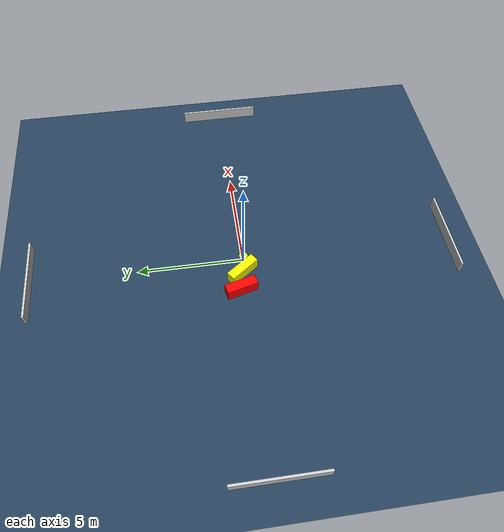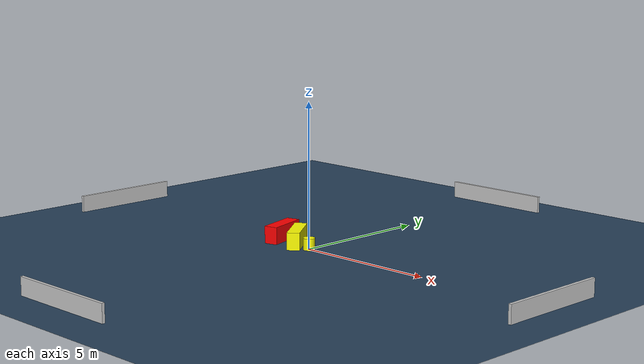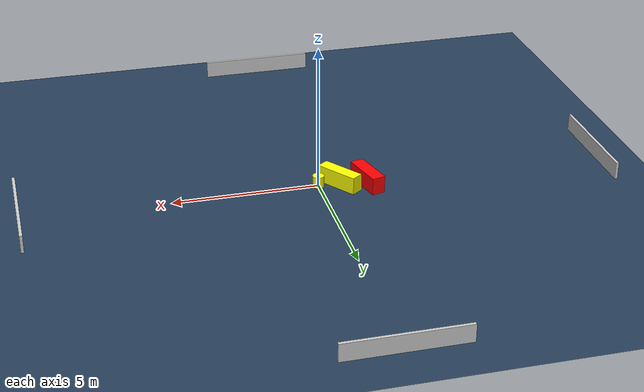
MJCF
<?xml version="1.0" ?>
<mujoco model="generated_environment">
  <option timestep="0.01" integrator="RK4" cone="elliptic"/>
  <default>
    <geom density="1"/>
  </default>
  <asset>
    <texture builtin="gradient" height="3072" name="skybox" rgb1="0.3 0.5 0.7" rgb2="0 0 0" type="skybox" width="512"/>
    <texture builtin="checker" height="300" name="groundplane" rgb1="0.2 0.3 0.4" rgb2="0.1 0.2 0.3" type="2d" width="300"/>
    <material name="groundplane" reflectance="0.2" texrepeat="5 5" texture="groundplane"/>
  </asset>
  <worldbody>
    <light dir="0 0 -1" directional="true" pos="0 0 1.5"/>
    <geom condim="3" friction="0.5 0.005 0.001" material="groundplane" name="floor" pos="0 0 0" size="0 0 0.05" type="plane"/>
    <body name="walls">
      <geom name="wall_1" condim="4" pos="-10.0 0.0 0.3" rgba="0.800000011920929 0.800000011920929 0.800000011920929 1.0" size="0.05 2.0 0.3" type="box"/>
      <geom name="wall_2" condim="4" pos="10.0 0.0 0.3" rgba="0.800000011920929 0.800000011920929 0.800000011920929 1.0" size="0.05 2.0 0.3" type="box"/>
      <geom name="wall_3" condim="4" pos="0.0 -10.0 0.3" rgba="0.800000011920929 0.800000011920929 0.800000011920929 1.0" size="2.0 0.05 0.3" type="box"/>
      <geom name="wall_4" condim="4" pos="0.0 10.0 0.3" rgba="0.800000011920929 0.800000011920929 0.800000011920929 1.0" size="2.0 0.05 0.3" type="box"/>
    </body>
    <body name="robot">
      <joint name="joint_x" type="slide" pos="0 0 0" axis="1 0 0"/>
      <joint name="joint_y" type="slide" pos="0 0 0" axis="0 1 0"/>
      <geom name="robot" type="cylinder" pos="0.0 0.0 0.2" size="0.2 0.2 0.0" mass="5.0" friction="1.0 0.005 0.0001" condim="4" rgba="1.0 1.0 0.0 1.0"/>
    </body>
    <body name="obstacle_1_movable">
      <geom name="obstacle_1_movable" condim="4" pos="-0.7144847320347425 0.138022173320456 0.3" euler="0 0 305.67586573731484" friction="0.0 0.005 0.001" rgba="1.0 1.0 0.0 1.0" size="0.7627300645427579 0.21743955547697724 0.3" type="box" mass="0.1"/>
      <joint type="free"/>
    </body>
    <body name="obstacle_2_static">
      <geom name="obstacle_2_static" condim="4" pos="-1.6408179161207523 0.31402290742667327 0.3" euler="0 0 104.64853764608824" friction="0.0 0.005 0.001" rgba="1.0 0.0 0.0 1.0" size="0.7346530937390565 0.2329007479415155 0.3" type="box"/>
    </body>
  </worldbody>
  <actuator>
    <motor name="actuator_x" joint="joint_x" gear="1" ctrlrange="-1 1"/>
    <motor name="actuator_y" joint="joint_y" gear="1" ctrlrange="-1 1"/>
  </actuator>
</mujoco>
